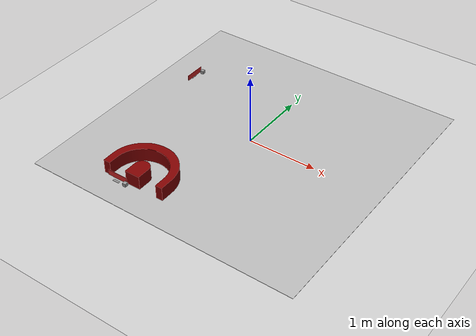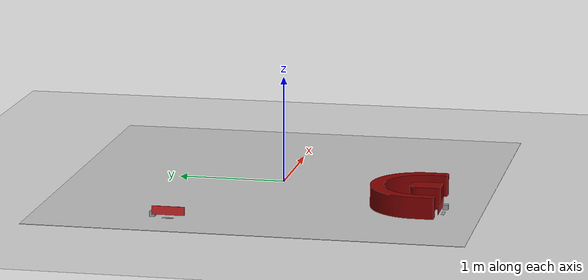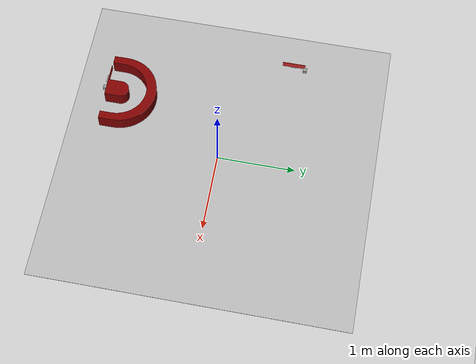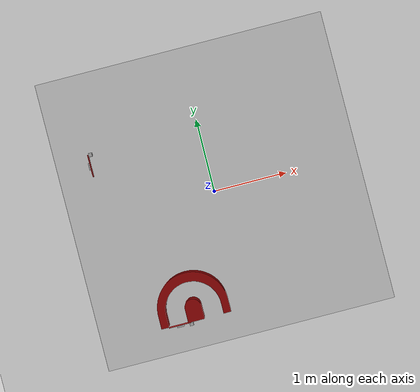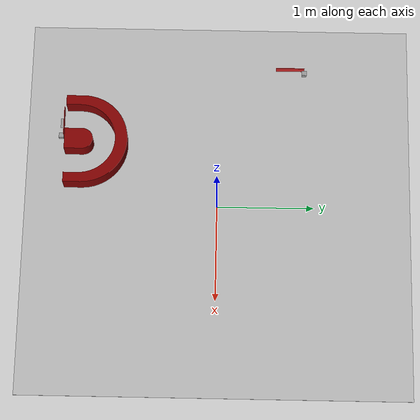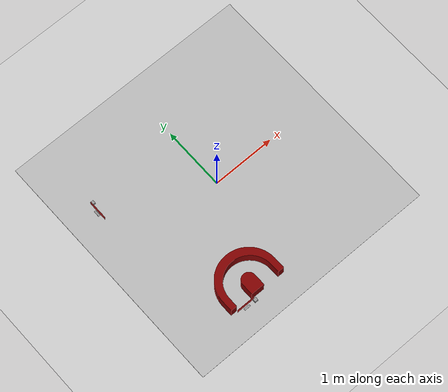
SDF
<sdf version="1.7">
 <world name="default">
  <light name="sun" type="directional">
   <pose>0 0 10 0 -0 0</pose>
   <diffuse>0.8 0.8 0.8 1</diffuse>
   <specular>0.2 0.2 0.2 1</specular>
   <attenuation>
    <range>1000</range>
    <constant>0.9</constant>
    <linear>0.01</linear>
    <quadratic>0.001</quadratic>
   </attenuation>
   <direction>-0.5 0.1 -0.9</direction>
   <spot><inner_angle>0</inner_angle><outer_angle>0</outer_angle><falloff>0</falloff></spot>
  </light>
  <model name="ground_plane">
   <static>1</static>
   <link name="link">
    <collision name="collision">
     <geometry><plane><normal>0 0 1</normal><size>100 100</size></plane></geometry>
     <surface>
      <contact><collide_bitmask>65535</collide_bitmask></contact>
      <friction><ode><mu>100</mu><mu2>50</mu2></ode></friction>
     </surface>
    </collision>
    <visual name="visual">
     <cast_shadows>0</cast_shadows>
     <geometry><plane><normal>0 0 1</normal><size>100 100</size></plane></geometry>
     <material>
      <script><uri>file://media/materials/scripts/gazebo.material</uri><name>Gazebo/Grey</name></script>
     </material>
    </visual>
   </link>
  </model>
  <gravity>0 0 -9.8</gravity>
  <magnetic_field>6e-06 2.3e-05 -4.2e-05</magnetic_field>
  <atmosphere type="adiabatic"/>
  <physics type="ode">
   <max_step_size>0.002</max_step_size>
   <real_time_factor>1</real_time_factor>
   <real_time_update_rate>500</real_time_update_rate>
  </physics>
  <scene><ambient>0.4 0.4 0.4 1</ambient><background>0.7 0.7 0.7 1</background><shadows>1</shadows></scene>
  <spherical_coordinates>
   <surface_model>EARTH_WGS84</surface_model>
   <latitude_deg>0</latitude_deg>
   <longitude_deg>0</longitude_deg>
   <elevation>0</elevation>
   <heading_deg>0</heading_deg>
  </spherical_coordinates>
  <model name="course">
   <static>1</static>
   <link name="course_link">
    <collision name="course_collision">
     <geometry><plane><normal>0 0 1</normal><size>4 4</size></plane></geometry>
     <surface><friction><ode><mu>100</mu><mu2>50</mu2></ode></friction></surface>
    </collision>
    <visual name="course_visual">
     <cast_shadows>0</cast_shadows>
     <geometry><plane><normal>0 0 1</normal><size>4 4</size></plane></geometry>
     <material>
      <script>
       <uri>model://course/materials/scripts</uri>
       <uri>model://course/materials/textures</uri>
       <name>course</name>
      </script>
     </material>
    </visual>
   </link>
   <pose>0 0 0.0001 0 -0 0</pose>
  </model>
  <model name="tunnel">
   <static>1</static>
   <link name="link_0">
    <inertial>
     <mass>1</mass>
     <inertia>
      <ixx>0.166667</ixx>
      <ixy>0</ixy>
      <ixz>0</ixz>
      <iyy>0.166667</iyy>
      <iyz>0</iyz>
      <izz>0.166667</izz>
     </inertia>
    </inertial>
    <visual name="visual">
     <geometry><mesh><uri>model://tunnel2.stl</uri><scale>1 1 1</scale></mesh></geometry>
     <material>
      <lighting>1</lighting>
      <script><uri>file://media/materials/scripts/gazebo.material</uri><name>Gazebo/Grey</name></script>
      <shader type="pixel"><normal_map>__default__</normal_map></shader>
      <ambient>0.5 0 0 1</ambient>
      <diffuse>0.5 0 0 1</diffuse>
      <specular>0.5 0 0 1</specular>
      <emissive>0.5 0 0 1</emissive>
     </material>
    </visual>
    <collision name="collision">
     <geometry><mesh><uri>model://tunnel2.stl</uri><scale>1 1 1</scale></mesh></geometry>
     <surface>
      <friction>
       <ode><mu>1</mu><mu2>1</mu2><fdir1>0 0 0</fdir1><slip1>0</slip1><slip2>0</slip2></ode>
       <torsional>
        <coefficient>1</coefficient>
        <patch_radius>0</patch_radius>
        <surface_radius>0</surface_radius>
        <use_patch_radius>1</use_patch_radius>
        <ode><slip>0</slip></ode>
       </torsional>
      </friction>
      <bounce><restitution_coefficient>0</restitution_coefficient><threshold>1e+06</threshold></bounce>
      <contact>
       <collide_without_contact>0</collide_without_contact>
       <collide_without_contact_bitmask>1</collide_without_contact_bitmask>
       <collide_bitmask>1</collide_bitmask>
       <ode>
        <soft_cfm>0</soft_cfm>
        <soft_erp>0.2</soft_erp>
        <kp>1e+13</kp>
        <kd>1</kd>
        <max_vel>0.01</max_vel>
        <min_depth>0</min_depth>
       </ode>
       <bullet>
        <split_impulse>1</split_impulse>
        <split_impulse_penetration_threshold>-0.01</split_impulse_penetration_threshold>
        <soft_cfm>0</soft_cfm>
        <soft_erp>0.2</soft_erp>
        <kp>1e+13</kp>
        <kd>1</kd>
       </bullet>
      </contact>
     </surface>
    </collision>
   </link>
   <static>0</static>
   <pose>-0.189 -0.946 0 0 -0 3.14</pose>
  </model>
  <model name="barrier1">
   <joint name="barrier_joint" type="fixed">
    <pose relative_to="__model__">-1.5 0.9 0.025 0 -0 1.57</pose>
    <parent>world</parent>
    <child>base_link</child>
   </joint>
   <link name="base_link">
    <pose relative_to="barrier_joint">0 0 0 0 -0 0</pose>
    <inertial>
     <mass>0.1</mass>
     <inertia><ixx>0.0001</ixx><ixy>0</ixy><ixz>0</ixz><iyy>0.0001</iyy><iyz>0</iyz><izz>0.0001</izz></inertia>
    </inertial>
    <collision name="base_link_collision"><geometry><box><size>0.05 0.05 0.005</size></box></geometry></collision>
    <visual name="base_link_visual">
     <geometry><box><size>0.05 0.05 0.05</size></box></geometry>
     <material>
      <script><name>Gazebo/Gray</name><uri>file://media/materials/scripts/gazebo.material</uri></script>
     </material>
    </visual>
   </link>
   <joint name="base_to_barrier" type="revolute">
    <pose relative_to="base_link">-0.025 0.025 0 1.57 -0 0</pose>
    <parent>base_link</parent>
    <child>barrier</child>
    <axis>
     <xyz>0 0 1</xyz>
     <limit><lower>-1.57</lower><upper>0</upper><effort>1000</effort><velocity>1</velocity></limit>
     <dynamics>
      <damping>0</damping>
      <friction>0.001</friction>
      <spring_reference>0</spring_reference>
      <spring_stiffness>0</spring_stiffness>
     </dynamics>
    </axis>
   </joint>
   <link name="barrier">
    <pose relative_to="base_to_barrier">0 0 0 0 -0 0</pose>
    <inertial>
     <mass>0.1</mass>
     <inertia><ixx>0.0001</ixx><ixy>0</ixy><ixz>0</ixz><iyy>0.0001</iyy><iyz>0</iyz><izz>0.0001</izz></inertia>
    </inertial>
    <collision name="barrier_collision">
     <pose>-0.125 0.04 -0.0025 0 -0 0</pose>
     <geometry><box><size>0.3 0.08 0.005</size></box></geometry>
    </collision>
    <visual name="barrier_visual">
     <pose>-0.125 0.04 -0.0025 0 -0 0</pose>
     <geometry><box><size>0.3 0.08 0.005</size></box></geometry>
     <material>
      <script><name>Gazebo/Red</name><uri>file://media/materials/scripts/gazebo.material</uri></script>
     </material>
    </visual>
   </link>
  </model>
  <model name="barrier2">
   <joint name="barrier_joint" type="fixed">
    <pose relative_to="__model__">-0.75 -1.65 0.025 0 0 0</pose>
    <parent>world</parent>
    <child>base_link</child>
   </joint>
   <link name="base_link">
    <pose relative_to="barrier_joint">0 0 0 0 -0 0</pose>
    <inertial>
     <mass>0.1</mass>
     <inertia><ixx>0.0001</ixx><ixy>0</ixy><ixz>0</ixz><iyy>0.0001</iyy><iyz>0</iyz><izz>0.0001</izz></inertia>
    </inertial>
    <collision name="base_link_collision"><geometry><box><size>0.05 0.05 0.005</size></box></geometry></collision>
    <visual name="base_link_visual">
     <geometry><box><size>0.05 0.05 0.05</size></box></geometry>
     <material>
      <script><name>Gazebo/Gray</name><uri>file://media/materials/scripts/gazebo.material</uri></script>
     </material>
    </visual>
   </link>
   <joint name="base_to_barrier" type="revolute">
    <pose relative_to="base_link">-0.025 0.025 0 1.57 -0 0</pose>
    <parent>base_link</parent>
    <child>barrier</child>
    <axis>
     <xyz>0 0 1</xyz>
     <limit><lower>-1.57</lower><upper>0</upper><effort>1000</effort><velocity>1</velocity></limit>
     <dynamics>
      <damping>0</damping>
      <friction>0.001</friction>
      <spring_reference>0</spring_reference>
      <spring_stiffness>0</spring_stiffness>
     </dynamics>
    </axis>
   </joint>
   <link name="barrier">
    <pose relative_to="base_to_barrier">0 0 0 0 -0 0</pose>
    <inertial>
     <mass>0.1</mass>
     <inertia><ixx>0.0001</ixx><ixy>0</ixy><ixz>0</ixz><iyy>0.0001</iyy><iyz>0</iyz><izz>0.0001</izz></inertia>
    </inertial>
    <collision name="barrier_collision">
     <pose>-0.125 0.04 -0.0025 0 -0 0</pose>
     <geometry><box><size>0.3 0.08 0.005</size></box></geometry>
    </collision>
    <visual name="barrier_visual">
     <pose>-0.125 0.04 -0.0025 0 -0 0</pose>
     <geometry><box><size>0.3 0.08 0.005</size></box></geometry>
     <material>
      <script><name>Gazebo/Red</name><uri>file://media/materials/scripts/gazebo.material</uri></script>
     </material>
    </visual>
   </link>
  </model>
  <model name="traffic_light1">
   <joint name="base_joint" type="fixed">
    <pose relative_to="__model__">-1.55 0.75 0.0025 0 -0 1.57</pose>
    <parent>world</parent>
    <child>base_link</child>
   </joint>
   <link name="base_link">
    <pose relative_to="base_joint">0 0 0 0 -0 0</pose>
    <inertial>
     <mass>0.1</mass>
     <inertia><ixx>0.0001</ixx><ixy>0</ixy><ixz>0</ixz><iyy>0.0001</iyy><iyz>0</iyz><izz>0.0001</izz></inertia>
    </inertial>
    <collision name="base_link_collision"><geometry><box><size>0.1 0.03 0.005</size></box></geometry></collision>
    <visual name="base_link_visual">
     <geometry><box><size>0.1 0.03 0.005</size></box></geometry>
     <material>
      <script><name>Gazebo/Gray</name><uri>file://media/materials/scripts/gazebo.material</uri></script>
     </material>
    </visual>
   </link>
   <joint name="base_to_light_green" type="prismatic">
    <pose relative_to="base_link">0.0333 0 0 0 -0 0</pose>
    <parent>base_link</parent>
    <child>light_green</child>
    <axis>
     <xyz>0 0 1</xyz>
     <limit><lower>0</lower><upper>0.002</upper><effort>1000</effort><velocity>1000</velocity></limit>
     <dynamics>
      <damping>0</damping>
      <friction>0.1</friction>
      <spring_reference>0</spring_reference>
      <spring_stiffness>0</spring_stiffness>
     </dynamics>
    </axis>
   </joint>
   <link name="light_green">
    <pose relative_to="base_to_light_green">0 0 0 0 -0 0</pose>
    <inertial>
     <mass>0.01</mass>
     <inertia><ixx>0.0001</ixx><ixy>0</ixy><ixz>0</ixz><iyy>0.0001</iyy><iyz>0</iyz><izz>0.0001</izz></inertia>
    </inertial>
    <visual name="light_green_visual">
     <geometry><cylinder><length>0.003</length><radius>0.009</radius></cylinder></geometry>
     <material>
      <script><name>Gazebo/Green</name><uri>file://media/materials/scripts/gazebo.material</uri></script>
     </material>
    </visual>
   </link>
   <joint name="base_to_light_red" type="prismatic">
    <pose relative_to="base_link">-0.0333 0 0 0 -0 0</pose>
    <parent>base_link</parent>
    <child>light_red</child>
    <axis>
     <xyz>0 0 1</xyz>
     <limit><lower>0</lower><upper>0.002</upper><effort>1000</effort><velocity>1000</velocity></limit>
     <dynamics>
      <damping>0</damping>
      <friction>0.1</friction>
      <spring_reference>0</spring_reference>
      <spring_stiffness>0</spring_stiffness>
     </dynamics>
    </axis>
   </joint>
   <link name="light_red">
    <pose relative_to="base_to_light_red">0 0 0 0 -0 0</pose>
    <inertial>
     <mass>0.01</mass>
     <inertia><ixx>0.0001</ixx><ixy>0</ixy><ixz>0</ixz><iyy>0.0001</iyy><iyz>0</iyz><izz>0.0001</izz></inertia>
    </inertial>
    <visual name="light_red_visual">
     <geometry><cylinder><length>0.003</length><radius>0.009</radius></cylinder></geometry>
     <material>
      <script><name>Gazebo/Red</name><uri>file://media/materials/scripts/gazebo.material</uri></script>
     </material>
    </visual>
   </link>
   <joint name="base_to_light_yellow" type="prismatic">
    <pose relative_to="base_link">0 0 0 0 -0 0</pose>
    <parent>base_link</parent>
    <child>light_yellow</child>
    <axis>
     <xyz>0 0 1</xyz>
     <limit><lower>0</lower><upper>0.002</upper><effort>1000</effort><velocity>1000</velocity></limit>
     <dynamics>
      <damping>0</damping>
      <friction>0.1</friction>
      <spring_reference>0</spring_reference>
      <spring_stiffness>0</spring_stiffness>
     </dynamics>
    </axis>
   </joint>
   <link name="light_yellow">
    <pose relative_to="base_to_light_yellow">0 0 0 0 -0 0</pose>
    <inertial>
     <mass>0.01</mass>
     <inertia><ixx>0.0001</ixx><ixy>0</ixy><ixz>0</ixz><iyy>0.0001</iyy><iyz>0</iyz><izz>0.0001</izz></inertia>
    </inertial>
    <visual name="light_yellow_visual">
     <geometry><cylinder><length>0.003</length><radius>0.009</radius></cylinder></geometry>
     <material>
      <script><name>Gazebo/Yellow</name><uri>file://media/materials/scripts/gazebo.material</uri></script>
     </material>
    </visual>
   </link>
  </model>
  <model name="traffic_light2">
   <joint name="base_joint" type="fixed">
    <pose relative_to="__model__">-0.9 -1.65 0.0025 0 0 3.14</pose>
    <parent>world</parent>
    <child>base_link</child>
   </joint>
   <link name="base_link">
    <pose relative_to="base_joint">0 0 0 0 -0 0</pose>
    <inertial>
     <mass>0.1</mass>
     <inertia><ixx>0.0001</ixx><ixy>0</ixy><ixz>0</ixz><iyy>0.0001</iyy><iyz>0</iyz><izz>0.0001</izz></inertia>
    </inertial>
    <collision name="base_link_collision"><geometry><box><size>0.1 0.03 0.005</size></box></geometry></collision>
    <visual name="base_link_visual">
     <geometry><box><size>0.1 0.03 0.005</size></box></geometry>
     <material>
      <script><name>Gazebo/Gray</name><uri>file://media/materials/scripts/gazebo.material</uri></script>
     </material>
    </visual>
   </link>
   <joint name="base_to_light_green" type="prismatic">
    <pose relative_to="base_link">0.0333 0 0 0 -0 0</pose>
    <parent>base_link</parent>
    <child>light_green</child>
    <axis>
     <xyz>0 0 1</xyz>
     <limit><lower>0</lower><upper>0.002</upper><effort>1000</effort><velocity>1000</velocity></limit>
     <dynamics>
      <damping>0</damping>
      <friction>0.1</friction>
      <spring_reference>0</spring_reference>
      <spring_stiffness>0</spring_stiffness>
     </dynamics>
    </axis>
   </joint>
   <link name="light_green">
    <pose relative_to="base_to_light_green">0 0 0 0 -0 0</pose>
    <inertial>
     <mass>0.01</mass>
     <inertia><ixx>0.0001</ixx><ixy>0</ixy><ixz>0</ixz><iyy>0.0001</iyy><iyz>0</iyz><izz>0.0001</izz></inertia>
    </inertial>
    <visual name="light_green_visual">
     <geometry><cylinder><length>0.003</length><radius>0.009</radius></cylinder></geometry>
     <material>
      <script><name>Gazebo/Green</name><uri>file://media/materials/scripts/gazebo.material</uri></script>
     </material>
    </visual>
   </link>
   <joint name="base_to_light_red" type="prismatic">
    <pose relative_to="base_link">-0.0333 0 0 0 -0 0</pose>
    <parent>base_link</parent>
    <child>light_red</child>
    <axis>
     <xyz>0 0 1</xyz>
     <limit><lower>0</lower><upper>0.002</upper><effort>1000</effort><velocity>1000</velocity></limit>
     <dynamics>
      <damping>0</damping>
      <friction>0.1</friction>
      <spring_reference>0</spring_reference>
      <spring_stiffness>0</spring_stiffness>
     </dynamics>
    </axis>
   </joint>
   <link name="light_red">
    <pose relative_to="base_to_light_red">0 0 0 0 -0 0</pose>
    <inertial>
     <mass>0.01</mass>
     <inertia><ixx>0.0001</ixx><ixy>0</ixy><ixz>0</ixz><iyy>0.0001</iyy><iyz>0</iyz><izz>0.0001</izz></inertia>
    </inertial>
    <visual name="light_red_visual">
     <geometry><cylinder><length>0.003</length><radius>0.009</radius></cylinder></geometry>
     <material>
      <script><name>Gazebo/Red</name><uri>file://media/materials/scripts/gazebo.material</uri></script>
     </material>
    </visual>
   </link>
   <joint name="base_to_light_yellow" type="prismatic">
    <pose relative_to="base_link">0 0 0 0 -0 0</pose>
    <parent>base_link</parent>
    <child>light_yellow</child>
    <axis>
     <xyz>0 0 1</xyz>
     <limit><lower>0</lower><upper>0.002</upper><effort>1000</effort><velocity>1000</velocity></limit>
     <dynamics>
      <damping>0</damping>
      <friction>0.1</friction>
      <spring_reference>0</spring_reference>
      <spring_stiffness>0</spring_stiffness>
     </dynamics>
    </axis>
   </joint>
   <link name="light_yellow">
    <pose relative_to="base_to_light_yellow">0 0 0 0 -0 0</pose>
    <inertial>
     <mass>0.01</mass>
     <inertia><ixx>0.0001</ixx><ixy>0</ixy><ixz>0</ixz><iyy>0.0001</iyy><iyz>0</iyz><izz>0.0001</izz></inertia>
    </inertial>
    <visual name="light_yellow_visual">
     <geometry><cylinder><length>0.003</length><radius>0.009</radius></cylinder></geometry>
     <material>
      <script><name>Gazebo/Yellow</name><uri>file://media/materials/scripts/gazebo.material</uri></script>
     </material>
    </visual>
   </link>
  </model>
 </world>
</sdf>
